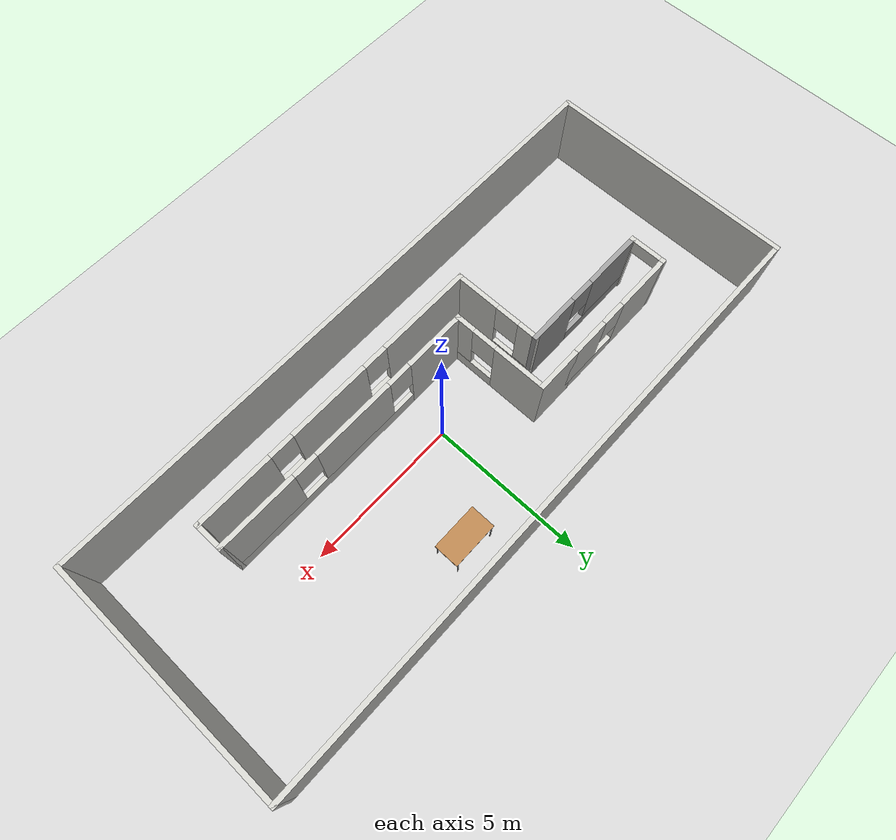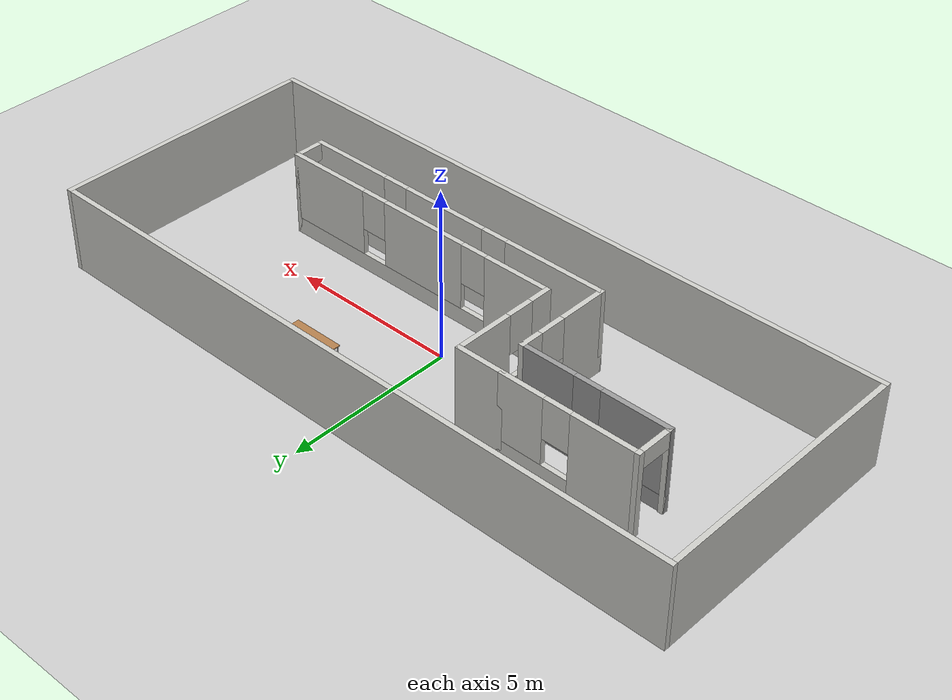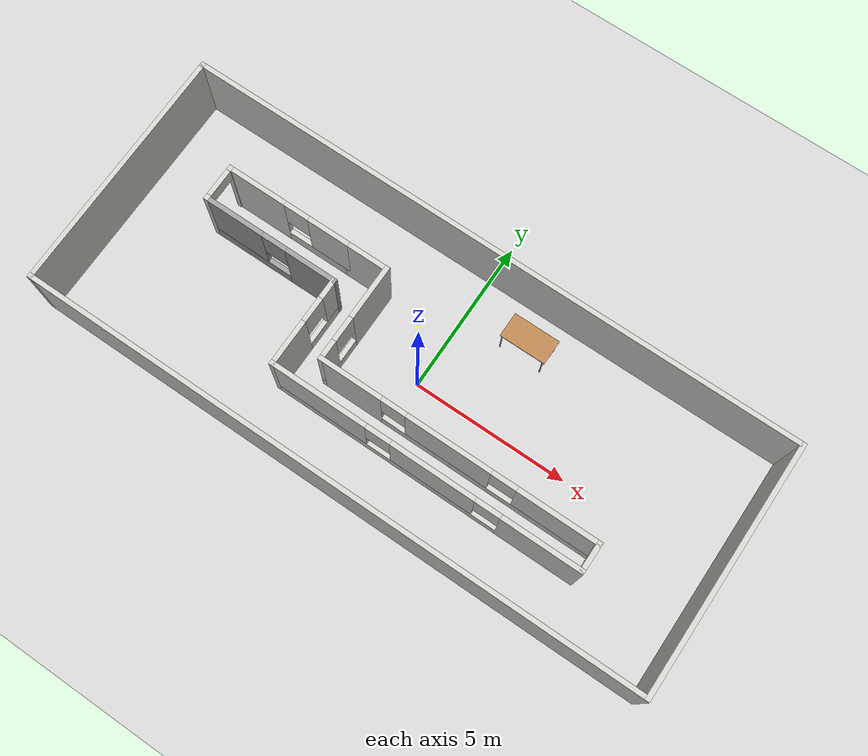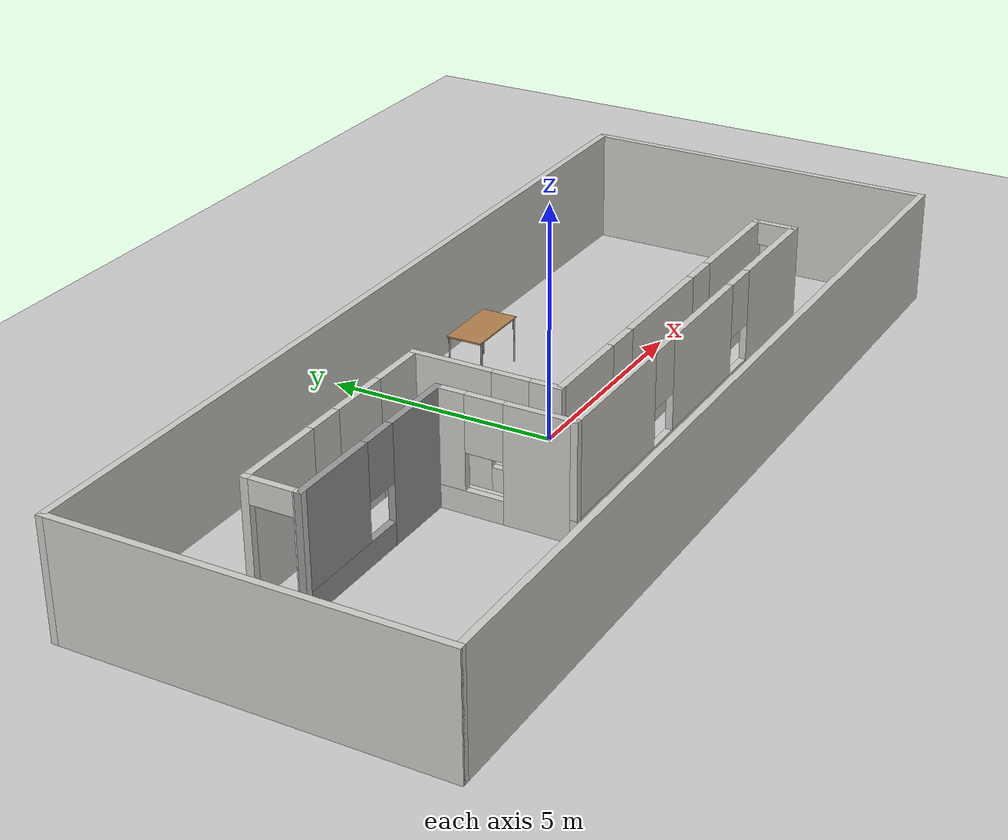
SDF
<sdf version="1.6">
 <world name="default">
  <light name="sun" type="directional">
   <pose>0 0 10 0 -0 0</pose>
   <diffuse>0.8 0.8 0.8 1</diffuse>
   <specular>0.2 0.2 0.2 1</specular>
   <attenuation>
    <range>1000</range>
    <constant>0.9</constant>
    <linear>0.01</linear>
    <quadratic>0.001</quadratic>
   </attenuation>
   <direction>-0.5 0.1 -0.9</direction>
  </light>
  <model name="ground_plane">
   <static>1</static>
   <link name="link">
    <collision name="collision">
     <geometry><plane><normal>0 0 1</normal><size>100 100</size></plane></geometry>
     <surface><friction><ode><mu>100</mu><mu2>50</mu2></ode></friction></surface>
    </collision>
    <visual name="visual">
     <cast_shadows>0</cast_shadows>
     <geometry><plane><normal>0 0 1</normal><size>100 100</size></plane></geometry>
     <material>
      <script><uri>file://media/materials/scripts/gazebo.material</uri><name>Gazebo/Grey</name></script>
     </material>
    </visual>
   </link>
  </model>
  <gravity>0 0 -9.8</gravity>
  <magnetic_field>6e-06 2.3e-05 -4.2e-05</magnetic_field>
  <atmosphere type="adiabatic"/>
  <physics name="default_physics" default="0" type="ode">
   <max_step_size>0.001</max_step_size>
   <real_time_factor>1</real_time_factor>
   <real_time_update_rate>1000</real_time_update_rate>
  </physics>
  <scene><ambient>0.4 0.4 0.4 1</ambient><background>0.7 0.7 0.7 1</background><shadows>1</shadows></scene>
  <audio><device>default</device></audio>
  <spherical_coordinates>
   <surface_model>EARTH_WGS84</surface_model>
   <latitude_deg>0</latitude_deg>
   <longitude_deg>0</longitude_deg>
   <elevation>0</elevation>
   <heading_deg>0</heading_deg>
  </spherical_coordinates>
  <model name="office">
   <pose>-0.215 -0.081387 0 0 -0 0</pose>
   <link name="Wall_10">
    <collision name="Wall_10_Collision">
     <geometry><box><size>8 0.15 2.5</size></box></geometry>
     <pose>0 0 1.25 0 -0 0</pose>
    </collision>
    <visual name="Wall_10_Visual">
     <pose>0 0 1.25 0 -0 0</pose>
     <geometry><box><size>8 0.15 2.5</size></box></geometry>
     <material>
      <script><uri>file://media/materials/scripts/gazebo.material</uri><name>Gazebo/CeilingTiled</name></script>
      <ambient>1 1 1 1</ambient>
     </material>
     <meta><layer>0</layer></meta>
    </visual>
    <pose>9.925 0 0 0 -0 1.5708</pose>
   </link>
   <link name="Wall_11">
    <collision name="Wall_11_Collision">
     <geometry><box><size>20 0.15 2.5</size></box></geometry>
     <pose>0 0 1.25 0 -0 0</pose>
    </collision>
    <visual name="Wall_11_Visual">
     <pose>0 0 1.25 0 -0 0</pose>
     <geometry><box><size>20 0.15 2.5</size></box></geometry>
     <material>
      <script><uri>file://media/materials/scripts/gazebo.material</uri><name>Gazebo/CeilingTiled</name></script>
      <ambient>1 1 1 1</ambient>
     </material>
     <meta><layer>0</layer></meta>
    </visual>
    <pose>0 3.925 0 0 -0 3.14159</pose>
   </link>
   <link name="Wall_13">
    <pose>-5.25217 1.76848 0 0 -0 0</pose>
    <visual name="Wall_13_Visual_0">
     <pose>-1.08163 0 1.25 0 -0 0</pose>
     <geometry><box><size>1.83674 0.15 2.5</size></box></geometry>
     <material>
      <script><uri>file://media/materials/scripts/gazebo.material</uri><name>Gazebo/CeilingTiled</name></script>
      <ambient>1 1 1 1</ambient>
     </material>
     <meta><layer>0</layer></meta>
    </visual>
    <collision name="Wall_13_Collision_0">
     <geometry><box><size>1.83674 0.15 2.5</size></box></geometry>
     <pose>-1.08163 0 1.25 0 -0 0</pose>
    </collision>
    <visual name="Wall_13_Visual_1">
     <pose>0.918371 0 0.25 0 -0 0</pose>
     <geometry><box><size>2.16326 0.15 0.5</size></box></geometry>
     <material>
      <script><uri>file://media/materials/scripts/gazebo.material</uri><name>Gazebo/CeilingTiled</name></script>
      <ambient>1 1 1 1</ambient>
     </material>
     <meta><layer>0</layer></meta>
    </visual>
    <collision name="Wall_13_Collision_1">
     <geometry><box><size>2.16326 0.15 0.5</size></box></geometry>
     <pose>0.918371 0 0.25 0 -0 0</pose>
    </collision>
    <visual name="Wall_13_Visual_2">
     <pose>1.31837 0 1.5 0 -0 0</pose>
     <geometry><box><size>1.36326 0.15 2</size></box></geometry>
     <material>
      <script><uri>file://media/materials/scripts/gazebo.material</uri><name>Gazebo/CeilingTiled</name></script>
      <ambient>1 1 1 1</ambient>
     </material>
     <meta><layer>0</layer></meta>
    </visual>
    <collision name="Wall_13_Collision_2">
     <geometry><box><size>1.36326 0.15 2</size></box></geometry>
     <pose>1.31837 0 1.5 0 -0 0</pose>
    </collision>
    <visual name="Wall_13_Visual_3">
     <pose>0.236742 0 1.9 0 -0 0</pose>
     <geometry><box><size>0.8 0.15 1.2</size></box></geometry>
     <material>
      <script><uri>file://media/materials/scripts/gazebo.material</uri><name>Gazebo/CeilingTiled</name></script>
      <ambient>1 1 1 1</ambient>
     </material>
     <meta><layer>0</layer></meta>
    </visual>
    <collision name="Wall_13_Collision_3">
     <geometry><box><size>0.8 0.15 1.2</size></box></geometry>
     <pose>0.236742 0 1.9 0 -0 0</pose>
    </collision>
   </link>
   <link name="Wall_14">
    <collision name="Wall_14_Collision">
     <geometry><box><size>1.5 0.15 2.5</size></box></geometry>
     <pose>0 0 1.25 0 -0 0</pose>
    </collision>
    <visual name="Wall_14_Visual">
     <pose>0 0 1.25 0 -0 0</pose>
     <geometry><box><size>1.5 0.15 2.5</size></box></geometry>
     <material>
      <script><uri>file://media/materials/scripts/gazebo.material</uri><name>Gazebo/CeilingTiled</name></script>
      <ambient>1 1 1 1</ambient>
     </material>
     <meta><layer>0</layer></meta>
    </visual>
    <pose>-2.65217 1.76848 0 0 -0 0</pose>
   </link>
   <link name="Wall_15">
    <pose>-1.97717 0.218478 0 0 -0 -1.5708</pose>
    <visual name="Wall_15_Visual_0">
     <pose>-0.739392 0 1.25 0 -0 0</pose>
     <geometry><box><size>1.77121 0.15 2.5</size></box></geometry>
     <material>
      <script><uri>file://media/materials/scripts/gazebo.material</uri><name>Gazebo/CeilingTiled</name></script>
      <ambient>1 1 1 1</ambient>
     </material>
     <meta><layer>0</layer></meta>
    </visual>
    <collision name="Wall_15_Collision_0">
     <geometry><box><size>1.77121 0.15 2.5</size></box></geometry>
     <pose>-0.739392 0 1.25 0 -0 0</pose>
    </collision>
    <visual name="Wall_15_Visual_1">
     <pose>0.885608 0 0.25 0 -0 0</pose>
     <geometry><box><size>1.47879 0.15 0.5</size></box></geometry>
     <material>
      <script><uri>file://media/materials/scripts/gazebo.material</uri><name>Gazebo/CeilingTiled</name></script>
      <ambient>1 1 1 1</ambient>
     </material>
     <meta><layer>0</layer></meta>
    </visual>
    <collision name="Wall_15_Collision_1">
     <geometry><box><size>1.47879 0.15 0.5</size></box></geometry>
     <pose>0.885608 0 0.25 0 -0 0</pose>
    </collision>
    <visual name="Wall_15_Visual_2">
     <pose>1.28561 0 1.5 0 -0 0</pose>
     <geometry><box><size>0.678785 0.15 2</size></box></geometry>
     <material>
      <script><uri>file://media/materials/scripts/gazebo.material</uri><name>Gazebo/CeilingTiled</name></script>
      <ambient>1 1 1 1</ambient>
     </material>
     <meta><layer>0</layer></meta>
    </visual>
    <collision name="Wall_15_Collision_2">
     <geometry><box><size>0.678785 0.15 2</size></box></geometry>
     <pose>1.28561 0 1.5 0 -0 0</pose>
    </collision>
    <visual name="Wall_15_Visual_3">
     <pose>0.546215 0 1.9 0 -0 0</pose>
     <geometry><box><size>0.8 0.15 1.2</size></box></geometry>
     <material>
      <script><uri>file://media/materials/scripts/gazebo.material</uri><name>Gazebo/CeilingTiled</name></script>
      <ambient>1 1 1 1</ambient>
     </material>
     <meta><layer>0</layer></meta>
    </visual>
    <collision name="Wall_15_Collision_3">
     <geometry><box><size>0.8 0.15 1.2</size></box></geometry>
     <pose>0.546215 0 1.9 0 -0 0</pose>
    </collision>
   </link>
   <link name="Wall_16">
    <pose>2.44783 -1.33152 0 0 -0 0</pose>
    <visual name="Wall_16_Visual_0">
     <pose>-3.46609 0 1.25 0 -0 0</pose>
     <geometry><box><size>2.06783 0.15 2.5</size></box></geometry>
     <material>
      <script><uri>file://media/materials/scripts/gazebo.material</uri><name>Gazebo/CeilingTiled</name></script>
      <ambient>1 1 1 1</ambient>
     </material>
     <meta><layer>0</layer></meta>
    </visual>
    <collision name="Wall_16_Collision_0">
     <geometry><box><size>2.06783 0.15 2.5</size></box></geometry>
     <pose>-3.46609 0 1.25 0 -0 0</pose>
    </collision>
    <visual name="Wall_16_Visual_1">
     <pose>1.03391 0 0.25 0 -0 0</pose>
     <geometry><box><size>6.93217 0.15 0.5</size></box></geometry>
     <material>
      <script><uri>file://media/materials/scripts/gazebo.material</uri><name>Gazebo/CeilingTiled</name></script>
      <ambient>1 1 1 1</ambient>
     </material>
     <meta><layer>0</layer></meta>
    </visual>
    <collision name="Wall_16_Collision_1">
     <geometry><box><size>6.93217 0.15 0.5</size></box></geometry>
     <pose>1.03391 0 0.25 0 -0 0</pose>
    </collision>
    <visual name="Wall_16_Visual_2">
     <pose>-0.270031 0 1.5 0 -0 0</pose>
     <geometry><box><size>2.72429 0.15 2</size></box></geometry>
     <material>
      <script><uri>file://media/materials/scripts/gazebo.material</uri><name>Gazebo/CeilingTiled</name></script>
      <ambient>1 1 1 1</ambient>
     </material>
     <meta><layer>0</layer></meta>
    </visual>
    <collision name="Wall_16_Collision_2">
     <geometry><box><size>2.72429 0.15 2</size></box></geometry>
     <pose>-0.270031 0 1.5 0 -0 0</pose>
    </collision>
    <visual name="Wall_16_Visual_3">
     <pose>3.19606 0 1.5 0 -0 0</pose>
     <geometry><box><size>2.60789 0.15 2</size></box></geometry>
     <material>
      <script><uri>file://media/materials/scripts/gazebo.material</uri><name>Gazebo/CeilingTiled</name></script>
      <ambient>1 1 1 1</ambient>
     </material>
     <meta><layer>0</layer></meta>
    </visual>
    <collision name="Wall_16_Collision_3">
     <geometry><box><size>2.60789 0.15 2</size></box></geometry>
     <pose>3.19606 0 1.5 0 -0 0</pose>
    </collision>
    <visual name="Wall_16_Visual_4">
     <pose>-2.03217 0 1.9 0 -0 0</pose>
     <geometry><box><size>0.8 0.15 1.2</size></box></geometry>
     <material>
      <script><uri>file://media/materials/scripts/gazebo.material</uri><name>Gazebo/CeilingTiled</name></script>
      <ambient>1 1 1 1</ambient>
     </material>
     <meta><layer>0</layer></meta>
    </visual>
    <collision name="Wall_16_Collision_4">
     <geometry><box><size>0.8 0.15 1.2</size></box></geometry>
     <pose>-2.03217 0 1.9 0 -0 0</pose>
    </collision>
    <visual name="Wall_16_Visual_5">
     <pose>1.49211 0 1.9 0 -0 0</pose>
     <geometry><box><size>0.8 0.15 1.2</size></box></geometry>
     <material>
      <script><uri>file://media/materials/scripts/gazebo.material</uri><name>Gazebo/CeilingTiled</name></script>
      <ambient>1 1 1 1</ambient>
     </material>
     <meta><layer>0</layer></meta>
    </visual>
    <collision name="Wall_16_Collision_5">
     <geometry><box><size>0.8 0.15 1.2</size></box></geometry>
     <pose>1.49211 0 1.9 0 -0 0</pose>
    </collision>
   </link>
   <link name="Wall_17">
    <pose>6.87283 -1.75652 0 0 -0 -1.5708</pose>
    <visual name="Wall_17_Visual_0">
     <pose>-0.444715 0 1.25 0 -0 0</pose>
     <geometry><box><size>0.11057 0.15 2.5</size></box></geometry>
     <material>
      <script><uri>file://media/materials/scripts/gazebo.material</uri><name>Gazebo/CeilingTiled</name></script>
      <ambient>1 1 1 1</ambient>
     </material>
     <meta><layer>0</layer></meta>
    </visual>
    <collision name="Wall_17_Collision_0">
     <geometry><box><size>0.11057 0.15 2.5</size></box></geometry>
     <pose>-0.444715 0 1.25 0 -0 0</pose>
    </collision>
    <visual name="Wall_17_Visual_1">
     <pose>0.055285 0 2.25 0 -0 0</pose>
     <geometry><box><size>0.88943 0.15 0.5</size></box></geometry>
     <material>
      <script><uri>file://media/materials/scripts/gazebo.material</uri><name>Gazebo/CeilingTiled</name></script>
      <ambient>1 1 1 1</ambient>
     </material>
     <meta><layer>0</layer></meta>
    </visual>
    <collision name="Wall_17_Collision_1">
     <geometry><box><size>0.88943 0.15 0.5</size></box></geometry>
     <pose>0.055285 0 2.25 0 -0 0</pose>
    </collision>
   </link>
   <link name="Wall_18">
    <pose>1.94783 -2.18152 0 0 -0 3.14159</pose>
    <visual name="Wall_18_Visual_0">
     <pose>-3.72236 0 1.25 0 -0 0</pose>
     <geometry><box><size>2.55529 0.15 2.5</size></box></geometry>
     <material>
      <script><uri>file://media/materials/scripts/gazebo.material</uri><name>Gazebo/CeilingTiled</name></script>
      <ambient>1 1 1 1</ambient>
     </material>
     <meta><layer>0</layer></meta>
    </visual>
    <collision name="Wall_18_Collision_0">
     <geometry><box><size>2.55529 0.15 2.5</size></box></geometry>
     <pose>-3.72236 0 1.25 0 -0 0</pose>
    </collision>
    <visual name="Wall_18_Visual_1">
     <pose>1.27764 0 0.25 0 -0 0</pose>
     <geometry><box><size>7.44471 0.15 0.5</size></box></geometry>
     <material>
      <script><uri>file://media/materials/scripts/gazebo.material</uri><name>Gazebo/CeilingTiled</name></script>
      <ambient>1 1 1 1</ambient>
     </material>
     <meta><layer>0</layer></meta>
    </visual>
    <collision name="Wall_18_Collision_1">
     <geometry><box><size>7.44471 0.15 0.5</size></box></geometry>
     <pose>1.27764 0 0.25 0 -0 0</pose>
    </collision>
    <visual name="Wall_18_Visual_2">
     <pose>-0.295721 0 1.5 0 -0 0</pose>
     <geometry><box><size>2.69799 0.15 2</size></box></geometry>
     <material>
      <script><uri>file://media/materials/scripts/gazebo.material</uri><name>Gazebo/CeilingTiled</name></script>
      <ambient>1 1 1 1</ambient>
     </material>
     <meta><layer>0</layer></meta>
    </visual>
    <collision name="Wall_18_Collision_2">
     <geometry><box><size>2.69799 0.15 2</size></box></geometry>
     <pose>-0.295721 0 1.5 0 -0 0</pose>
    </collision>
    <visual name="Wall_18_Visual_3">
     <pose>3.42664 0 1.5 0 -0 0</pose>
     <geometry><box><size>3.14673 0.15 2</size></box></geometry>
     <material>
      <script><uri>file://media/materials/scripts/gazebo.material</uri><name>Gazebo/CeilingTiled</name></script>
      <ambient>1 1 1 1</ambient>
     </material>
     <meta><layer>0</layer></meta>
    </visual>
    <collision name="Wall_18_Collision_3">
     <geometry><box><size>3.14673 0.15 2</size></box></geometry>
     <pose>3.42664 0 1.5 0 -0 0</pose>
    </collision>
    <visual name="Wall_18_Visual_4">
     <pose>-2.04471 0 1.9 0 -0 0</pose>
     <geometry><box><size>0.8 0.15 1.2</size></box></geometry>
     <material>
      <script><uri>file://media/materials/scripts/gazebo.material</uri><name>Gazebo/CeilingTiled</name></script>
      <ambient>1 1 1 1</ambient>
     </material>
     <meta><layer>0</layer></meta>
    </visual>
    <collision name="Wall_18_Collision_4">
     <geometry><box><size>0.8 0.15 1.2</size></box></geometry>
     <pose>-2.04471 0 1.9 0 -0 0</pose>
    </collision>
    <visual name="Wall_18_Visual_5">
     <pose>1.45327 0 1.9 0 -0 0</pose>
     <geometry><box><size>0.8 0.15 1.2</size></box></geometry>
     <material>
      <script><uri>file://media/materials/scripts/gazebo.material</uri><name>Gazebo/CeilingTiled</name></script>
      <ambient>1 1 1 1</ambient>
     </material>
     <meta><layer>0</layer></meta>
    </visual>
    <collision name="Wall_18_Collision_5">
     <geometry><box><size>0.8 0.15 1.2</size></box></geometry>
     <pose>1.45327 0 1.9 0 -0 0</pose>
    </collision>
   </link>
   <link name="Wall_19">
    <pose>-2.97717 -0.756522 0 0 -0 1.5708</pose>
    <visual name="Wall_19_Visual_0">
     <pose>-0.742183 0 1.25 0 -0 0</pose>
     <geometry><box><size>1.51563 0.15 2.5</size></box></geometry>
     <material>
      <script><uri>file://media/materials/scripts/gazebo.material</uri><name>Gazebo/CeilingTiled</name></script>
      <ambient>1 1 1 1</ambient>
     </material>
     <meta><layer>0</layer></meta>
    </visual>
    <collision name="Wall_19_Collision_0">
     <geometry><box><size>1.51563 0.15 2.5</size></box></geometry>
     <pose>-0.742183 0 1.25 0 -0 0</pose>
    </collision>
    <visual name="Wall_19_Visual_1">
     <pose>0.757817 0 0.25 0 -0 0</pose>
     <geometry><box><size>1.48437 0.15 0.5</size></box></geometry>
     <material>
      <script><uri>file://media/materials/scripts/gazebo.material</uri><name>Gazebo/CeilingTiled</name></script>
      <ambient>1 1 1 1</ambient>
     </material>
     <meta><layer>0</layer></meta>
    </visual>
    <collision name="Wall_19_Collision_1">
     <geometry><box><size>1.48437 0.15 0.5</size></box></geometry>
     <pose>0.757817 0 0.25 0 -0 0</pose>
    </collision>
    <visual name="Wall_19_Visual_2">
     <pose>1.15782 0 1.5 0 -0 0</pose>
     <geometry><box><size>0.684366 0.15 2</size></box></geometry>
     <material>
      <script><uri>file://media/materials/scripts/gazebo.material</uri><name>Gazebo/CeilingTiled</name></script>
      <ambient>1 1 1 1</ambient>
     </material>
     <meta><layer>0</layer></meta>
    </visual>
    <collision name="Wall_19_Collision_2">
     <geometry><box><size>0.684366 0.15 2</size></box></geometry>
     <pose>1.15782 0 1.5 0 -0 0</pose>
    </collision>
    <visual name="Wall_19_Visual_3">
     <pose>0.415634 0 1.9 0 -0 0</pose>
     <geometry><box><size>0.8 0.15 1.2</size></box></geometry>
     <material>
      <script><uri>file://media/materials/scripts/gazebo.material</uri><name>Gazebo/CeilingTiled</name></script>
      <ambient>1 1 1 1</ambient>
     </material>
     <meta><layer>0</layer></meta>
    </visual>
    <collision name="Wall_19_Collision_3">
     <geometry><box><size>0.8 0.15 1.2</size></box></geometry>
     <pose>0.415634 0 1.9 0 -0 0</pose>
    </collision>
   </link>
   <link name="Wall_20">
    <pose>-5.15217 0.668478 0 0 -0 3.14159</pose>
    <visual name="Wall_20_Visual_0">
     <pose>-1.40652 0 1.25 0 -0 0</pose>
     <geometry><box><size>1.68696 0.15 2.5</size></box></geometry>
     <material>
      <script><uri>file://media/materials/scripts/gazebo.material</uri><name>Gazebo/Grey</name></script>
      <ambient>1 1 1 1</ambient>
     </material>
     <meta><layer>0</layer></meta>
    </visual>
    <collision name="Wall_20_Collision_0">
     <geometry><box><size>1.68696 0.15 2.5</size></box></geometry>
     <pose>-1.40652 0 1.25 0 -0 0</pose>
    </collision>
    <visual name="Wall_20_Visual_1">
     <pose>0.843479 0 0.25 0 -0 0</pose>
     <geometry><box><size>2.81304 0.15 0.5</size></box></geometry>
     <material>
      <script><uri>file://media/materials/scripts/gazebo.material</uri><name>Gazebo/Grey</name></script>
      <ambient>1 1 1 1</ambient>
     </material>
     <meta><layer>0</layer></meta>
    </visual>
    <collision name="Wall_20_Collision_1">
     <geometry><box><size>2.81304 0.15 0.5</size></box></geometry>
     <pose>0.843479 0 0.25 0 -0 0</pose>
    </collision>
    <visual name="Wall_20_Visual_2">
     <pose>1.24348 0 1.5 0 -0 0</pose>
     <geometry><box><size>2.01304 0.15 2</size></box></geometry>
     <material>
      <script><uri>file://media/materials/scripts/gazebo.material</uri><name>Gazebo/Grey</name></script>
      <ambient>1 1 1 1</ambient>
     </material>
     <meta><layer>0</layer></meta>
    </visual>
    <collision name="Wall_20_Collision_2">
     <geometry><box><size>2.01304 0.15 2</size></box></geometry>
     <pose>1.24348 0 1.5 0 -0 0</pose>
    </collision>
    <visual name="Wall_20_Visual_3">
     <pose>-0.163042 0 1.9 0 -0 0</pose>
     <geometry><box><size>0.8 0.15 1.2</size></box></geometry>
     <material>
      <script><uri>file://media/materials/scripts/gazebo.material</uri><name>Gazebo/Grey</name></script>
      <ambient>1 1 1 1</ambient>
     </material>
     <meta><layer>0</layer></meta>
    </visual>
    <collision name="Wall_20_Collision_3">
     <geometry><box><size>0.8 0.15 1.2</size></box></geometry>
     <pose>-0.163042 0 1.9 0 -0 0</pose>
    </collision>
   </link>
   <link name="Wall_21">
    <pose>-7.32717 1.21848 0 0 -0 1.5708</pose>
    <visual name="Wall_21_Visual_0">
     <pose>-0.536237 0 1.25 0 -0 0</pose>
     <geometry><box><size>0.177526 0.15 2.5</size></box></geometry>
     <material>
      <script><uri>file://media/materials/scripts/gazebo.material</uri><name>Gazebo/CeilingTiled</name></script>
      <ambient>1 1 1 1</ambient>
     </material>
     <meta><layer>0</layer></meta>
    </visual>
    <collision name="Wall_21_Collision_0">
     <geometry><box><size>0.177526 0.15 2.5</size></box></geometry>
     <pose>-0.536237 0 1.25 0 -0 0</pose>
    </collision>
    <visual name="Wall_21_Visual_1">
     <pose>0.538763 0 1.25 0 -0 0</pose>
     <geometry><box><size>0.172474 0.15 2.5</size></box></geometry>
     <material>
      <script><uri>file://media/materials/scripts/gazebo.material</uri><name>Gazebo/CeilingTiled</name></script>
      <ambient>1 1 1 1</ambient>
     </material>
     <meta><layer>0</layer></meta>
    </visual>
    <collision name="Wall_21_Collision_1">
     <geometry><box><size>0.172474 0.15 2.5</size></box></geometry>
     <pose>0.538763 0 1.25 0 -0 0</pose>
    </collision>
    <visual name="Wall_21_Visual_2">
     <pose>0.002526 0 2.25 0 -0 0</pose>
     <geometry><box><size>0.9 0.15 0.5</size></box></geometry>
     <material>
      <script><uri>file://media/materials/scripts/gazebo.material</uri><name>Gazebo/CeilingTiled</name></script>
      <ambient>1 1 1 1</ambient>
     </material>
     <meta><layer>0</layer></meta>
    </visual>
    <collision name="Wall_21_Collision_2">
     <geometry><box><size>0.9 0.15 0.5</size></box></geometry>
     <pose>0.002526 0 2.25 0 -0 0</pose>
    </collision>
   </link>
   <link name="Wall_8">
    <collision name="Wall_8_Collision">
     <geometry><box><size>8 0.15 2.5</size></box></geometry>
     <pose>0 0 1.25 0 -0 0</pose>
    </collision>
    <visual name="Wall_8_Visual">
     <pose>0 0 1.25 0 -0 0</pose>
     <geometry><box><size>8 0.15 2.5</size></box></geometry>
     <material>
      <script><uri>file://media/materials/scripts/gazebo.material</uri><name>Gazebo/CeilingTiled</name></script>
      <ambient>1 1 1 1</ambient>
     </material>
     <meta><layer>0</layer></meta>
    </visual>
    <pose>-9.925 0 0 0 -0 -1.5708</pose>
   </link>
   <link name="Wall_9">
    <collision name="Wall_9_Collision">
     <geometry><box><size>20 0.15 2.5</size></box></geometry>
     <pose>0 0 1.25 0 -0 0</pose>
    </collision>
    <visual name="Wall_9_Visual">
     <pose>0 0 1.25 0 -0 0</pose>
     <geometry><box><size>20 0.15 2.5</size></box></geometry>
     <material>
      <script><uri>file://media/materials/scripts/gazebo.material</uri><name>Gazebo/CeilingTiled</name></script>
      <ambient>1 1 1 1</ambient>
     </material>
     <meta><layer>0</layer></meta>
    </visual>
    <pose>0 -3.925 0 0 -0 0</pose>
   </link>
   <static>1</static>
  </model>
  <model name="table">
   <static>1</static>
   <link name="link">
    <collision name="surface">
     <pose>0 0 1 0 -0 0</pose>
     <geometry><box><size>1.5 0.8 0.03</size></box></geometry>
     <surface><friction><ode><mu>0.6</mu><mu2>0.6</mu2></ode></friction></surface>
    </collision>
    <visual name="visual1">
     <pose>0 0 1 0 -0 0</pose>
     <geometry><box><size>1.5 0.8 0.03</size></box></geometry>
     <material>
      <script><uri>file://media/materials/scripts/gazebo.material</uri><name>Gazebo/Wood</name></script>
     </material>
    </visual>
    <collision name="front_left_leg">
     <pose>0.68 0.38 0.5 0 -0 0</pose>
     <geometry><cylinder><radius>0.02</radius><length>1</length></cylinder></geometry>
    </collision>
    <visual name="front_left_leg">
     <pose>0.68 0.38 0.5 0 -0 0</pose>
     <geometry><cylinder><radius>0.02</radius><length>1</length></cylinder></geometry>
     <material>
      <script><uri>file://media/materials/scripts/gazebo.material</uri><name>Gazebo/Grey</name></script>
     </material>
    </visual>
    <collision name="front_right_leg">
     <pose>0.68 -0.38 0.5 0 -0 0</pose>
     <geometry><cylinder><radius>0.02</radius><length>1</length></cylinder></geometry>
    </collision>
    <visual name="front_right_leg">
     <pose>0.68 -0.38 0.5 0 -0 0</pose>
     <geometry><cylinder><radius>0.02</radius><length>1</length></cylinder></geometry>
     <material>
      <script><uri>file://media/materials/scripts/gazebo.material</uri><name>Gazebo/Grey</name></script>
     </material>
    </visual>
    <collision name="back_right_leg">
     <pose>-0.68 -0.38 0.5 0 -0 0</pose>
     <geometry><cylinder><radius>0.02</radius><length>1</length></cylinder></geometry>
    </collision>
    <visual name="back_right_leg">
     <pose>-0.68 -0.38 0.5 0 -0 0</pose>
     <geometry><cylinder><radius>0.02</radius><length>1</length></cylinder></geometry>
     <material>
      <script><uri>file://media/materials/scripts/gazebo.material</uri><name>Gazebo/Grey</name></script>
     </material>
    </visual>
    <collision name="back_left_leg">
     <pose>-0.68 0.38 0.5 0 -0 0</pose>
     <geometry><cylinder><radius>0.02</radius><length>1</length></cylinder></geometry>
    </collision>
    <visual name="back_left_leg">
     <pose>-0.68 0.38 0.5 0 -0 0</pose>
     <geometry><cylinder><radius>0.02</radius><length>1</length></cylinder></geometry>
     <material>
      <script><uri>file://media/materials/scripts/gazebo.material</uri><name>Gazebo/Grey</name></script>
     </material>
    </visual>
   </link>
   <pose>2.01181 2.69116 0 0 -0 0</pose>
  </model>
 </world>
</sdf>
